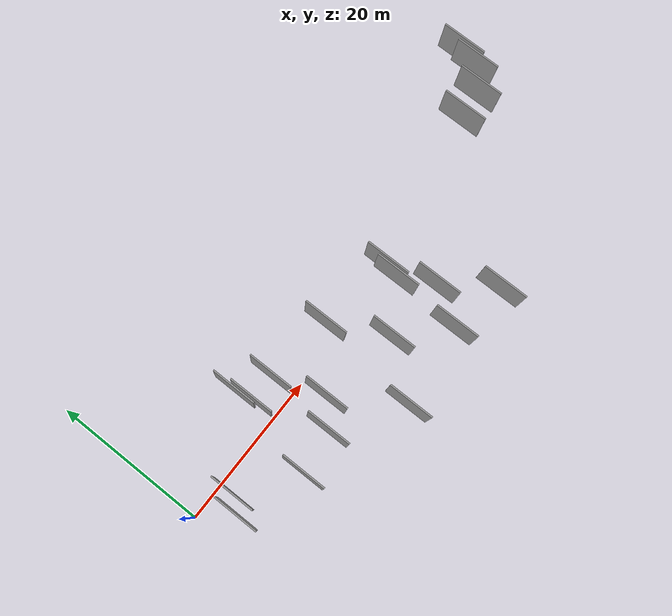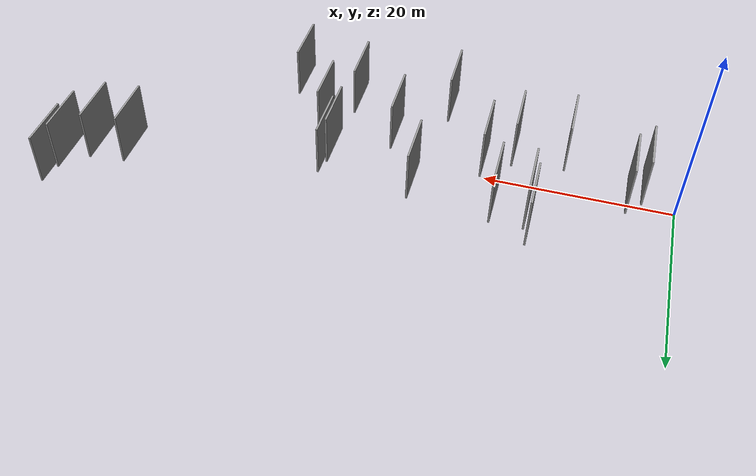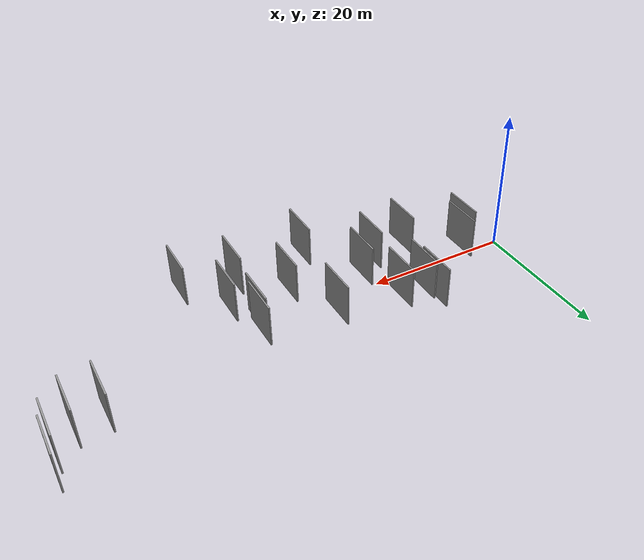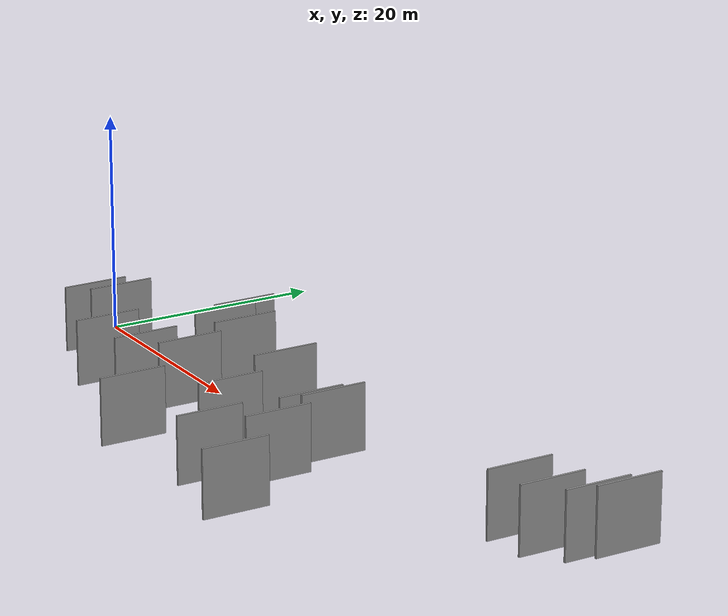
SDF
<sdf version="1.6">
 <world name="default">
  <scene>
   <sky><clouds><speed>12</speed></clouds></sky>
   <ambient>0.4 0.4 0.4 1</ambient>
   <background>0.7 0.7 0.7 1</background>
   <shadows>1</shadows>
  </scene>
  <gravity>0 0 -9.8066</gravity>
  <magnetic_field>6e-06 2.3e-05 -4.2e-05</magnetic_field>
  <physics default="0" name="default_physics" type="ode">
   <ode>
    <solver>
     <type>quick</type>
     <iters>10</iters>
     <sor>1.0</sor>
     <use_dynamic_moi_rescaling>0</use_dynamic_moi_rescaling>
    </solver>
    <constraints>
     <cfm>0</cfm>
     <erp>0.2</erp>
     <contact_max_correcting_vel>100</contact_max_correcting_vel>
     <contact_surface_layer>0.001</contact_surface_layer>
    </constraints>
   </ode>
   <max_step_size>0.004</max_step_size>
   <real_time_factor>1</real_time_factor>
   <real_time_update_rate>250</real_time_update_rate>
  </physics>
  <light name="sun" type="directional">
   <pose>0 0 10 0 0 0</pose>
   <diffuse>0.8 0.8 0.8 1</diffuse>
   <specular>0.2 0.2 0.2 1</specular>
   <attenuation>
    <range>1000</range>
    <constant>0.9</constant>
    <linear>0.01</linear>
    <quadratic>0.001</quadratic>
   </attenuation>
   <direction>-0.5 0.1 -0.9</direction>
  </light>
  <model name="grey_wall_1">
   <static>1</static>
   <pose>43.8868 -11.6122 0.0 0.000000 0.000000 1.570796</pose>
   <link name="link">
    <pose>0 0 3.00 0 0 0</pose>
    <collision name="collision"><geometry><box><size>6.00 0.2 6.00</size></box></geometry></collision>
    <visual name="visual">
     <cast_shadows>0</cast_shadows>
     <geometry><box><size>6.00 0.2 6.00</size></box></geometry>
     <material>
      <script>
       <uri>model://grey_wall/materials/scripts</uri>
       <uri>model://grey_wall/materials/textures</uri>
       <name>vrc/grey_wall</name>
      </script>
     </material>
    </visual>
   </link>
  </model>
  <model name="grey_wall_2">
   <static>1</static>
   <pose>37.6264 0.9709 0.0 0.000000 0.000000 1.570796</pose>
   <link name="link">
    <pose>0 0 3.00 0 0 0</pose>
    <collision name="collision"><geometry><box><size>6.00 0.2 6.00</size></box></geometry></collision>
    <visual name="visual">
     <cast_shadows>0</cast_shadows>
     <geometry><box><size>6.00 0.2 6.00</size></box></geometry>
     <material>
      <script>
       <uri>model://grey_wall/materials/scripts</uri>
       <uri>model://grey_wall/materials/textures</uri>
       <name>vrc/grey_wall</name>
      </script>
     </material>
    </visual>
   </link>
  </model>
  <model name="grey_wall_3">
   <static>1</static>
   <pose>65.8172 10.5460 0.0 0.000000 0.000000 1.570796</pose>
   <link name="link">
    <pose>0 0 3.00 0 0 0</pose>
    <collision name="collision"><geometry><box><size>6.00 0.2 6.00</size></box></geometry></collision>
    <visual name="visual">
     <cast_shadows>0</cast_shadows>
     <geometry><box><size>6.00 0.2 6.00</size></box></geometry>
     <material>
      <script>
       <uri>model://grey_wall/materials/scripts</uri>
       <uri>model://grey_wall/materials/textures</uri>
       <name>vrc/grey_wall</name>
      </script>
     </material>
    </visual>
   </link>
  </model>
  <model name="grey_wall_4">
   <static>1</static>
   <pose>30.9782 -4.9634 0.0 0.000000 0.000000 1.570796</pose>
   <link name="link">
    <pose>0 0 3.00 0 0 0</pose>
    <collision name="collision"><geometry><box><size>6.00 0.2 6.00</size></box></geometry></collision>
    <visual name="visual">
     <cast_shadows>0</cast_shadows>
     <geometry><box><size>6.00 0.2 6.00</size></box></geometry>
     <material>
      <script>
       <uri>model://grey_wall/materials/scripts</uri>
       <uri>model://grey_wall/materials/textures</uri>
       <name>vrc/grey_wall</name>
      </script>
     </material>
    </visual>
   </link>
  </model>
  <model name="grey_wall_5">
   <static>1</static>
   <pose>3.4092 -3.5799 0.0 0.000000 0.000000 1.570796</pose>
   <link name="link">
    <pose>0 0 3.00 0 0 0</pose>
    <collision name="collision"><geometry><box><size>6.00 0.2 6.00</size></box></geometry></collision>
    <visual name="visual">
     <cast_shadows>0</cast_shadows>
     <geometry><box><size>6.00 0.2 6.00</size></box></geometry>
     <material>
      <script>
       <uri>model://grey_wall/materials/scripts</uri>
       <uri>model://grey_wall/materials/textures</uri>
       <name>vrc/grey_wall</name>
      </script>
     </material>
    </visual>
   </link>
  </model>
  <model name="grey_wall_6">
   <static>1</static>
   <pose>36.5905 -9.9612 0.0 0.000000 0.000000 1.570796</pose>
   <link name="link">
    <pose>0 0 3.00 0 0 0</pose>
    <collision name="collision"><geometry><box><size>6.00 0.2 6.00</size></box></geometry></collision>
    <visual name="visual">
     <cast_shadows>0</cast_shadows>
     <geometry><box><size>6.00 0.2 6.00</size></box></geometry>
     <material>
      <script>
       <uri>model://grey_wall/materials/scripts</uri>
       <uri>model://grey_wall/materials/textures</uri>
       <name>vrc/grey_wall</name>
      </script>
     </material>
    </visual>
   </link>
  </model>
  <model name="grey_wall_7">
   <static>1</static>
   <pose>14.8238 3.4158 0.0 0.000000 0.000000 1.570796</pose>
   <link name="link">
    <pose>0 0 3.00 0 0 0</pose>
    <collision name="collision"><geometry><box><size>6.00 0.2 6.00</size></box></geometry></collision>
    <visual name="visual">
     <cast_shadows>0</cast_shadows>
     <geometry><box><size>6.00 0.2 6.00</size></box></geometry>
     <material>
      <script>
       <uri>model://grey_wall/materials/scripts</uri>
       <uri>model://grey_wall/materials/textures</uri>
       <name>vrc/grey_wall</name>
      </script>
     </material>
    </visual>
   </link>
  </model>
  <model name="grey_wall_8">
   <static>1</static>
   <pose>65.2599 8.0636 0.0 0.000000 0.000000 1.570796</pose>
   <link name="link">
    <pose>0 0 3.00 0 0 0</pose>
    <collision name="collision"><geometry><box><size>6.00 0.2 6.00</size></box></geometry></collision>
    <visual name="visual">
     <cast_shadows>0</cast_shadows>
     <geometry><box><size>6.00 0.2 6.00</size></box></geometry>
     <material>
      <script>
       <uri>model://grey_wall/materials/scripts</uri>
       <uri>model://grey_wall/materials/textures</uri>
       <name>vrc/grey_wall</name>
      </script>
     </material>
    </visual>
   </link>
  </model>
  <model name="grey_wall_9">
   <static>1</static>
   <pose>25.7594 -11.3495 0.0 0.000000 0.000000 1.570796</pose>
   <link name="link">
    <pose>0 0 3.00 0 0 0</pose>
    <collision name="collision"><geometry><box><size>6.00 0.2 6.00</size></box></geometry></collision>
    <visual name="visual">
     <cast_shadows>0</cast_shadows>
     <geometry><box><size>6.00 0.2 6.00</size></box></geometry>
     <material>
      <script>
       <uri>model://grey_wall/materials/scripts</uri>
       <uri>model://grey_wall/materials/textures</uri>
       <name>vrc/grey_wall</name>
      </script>
     </material>
    </visual>
   </link>
  </model>
  <model name="grey_wall_10">
   <static>1</static>
   <pose>18.4055 3.4214 0.0 0.000000 0.000000 1.570796</pose>
   <link name="link">
    <pose>0 0 3.00 0 0 0</pose>
    <collision name="collision"><geometry><box><size>6.00 0.2 6.00</size></box></geometry></collision>
    <visual name="visual">
     <cast_shadows>0</cast_shadows>
     <geometry><box><size>6.00 0.2 6.00</size></box></geometry>
     <material>
      <script>
       <uri>model://grey_wall/materials/scripts</uri>
       <uri>model://grey_wall/materials/textures</uri>
       <name>vrc/grey_wall</name>
      </script>
     </material>
    </visual>
   </link>
  </model>
  <model name="grey_wall_11">
   <static>1</static>
   <pose>39.4593 -5.2583 0.0 0.000000 0.000000 1.570796</pose>
   <link name="link">
    <pose>0 0 3.00 0 0 0</pose>
    <collision name="collision"><geometry><box><size>6.00 0.2 6.00</size></box></geometry></collision>
    <visual name="visual">
     <cast_shadows>0</cast_shadows>
     <geometry><box><size>6.00 0.2 6.00</size></box></geometry>
     <material>
      <script>
       <uri>model://grey_wall/materials/scripts</uri>
       <uri>model://grey_wall/materials/textures</uri>
       <name>vrc/grey_wall</name>
      </script>
     </material>
    </visual>
   </link>
  </model>
  <model name="grey_wall_12">
   <static>1</static>
   <pose>27.4023 2.3140 0.0 0.000000 0.000000 1.570796</pose>
   <link name="link">
    <pose>0 0 3.00 0 0 0</pose>
    <collision name="collision"><geometry><box><size>6.00 0.2 6.00</size></box></geometry></collision>
    <visual name="visual">
     <cast_shadows>0</cast_shadows>
     <geometry><box><size>6.00 0.2 6.00</size></box></geometry>
     <material>
      <script>
       <uri>model://grey_wall/materials/scripts</uri>
       <uri>model://grey_wall/materials/textures</uri>
       <name>vrc/grey_wall</name>
      </script>
     </material>
    </visual>
   </link>
  </model>
  <model name="grey_wall_13">
   <static>1</static>
   <pose>58.7687 5.2185 0.0 0.000000 0.000000 1.570796</pose>
   <link name="link">
    <pose>0 0 3.00 0 0 0</pose>
    <collision name="collision"><geometry><box><size>6.00 0.2 6.00</size></box></geometry></collision>
    <visual name="visual">
     <cast_shadows>0</cast_shadows>
     <geometry><box><size>6.00 0.2 6.00</size></box></geometry>
     <material>
      <script>
       <uri>model://grey_wall/materials/scripts</uri>
       <uri>model://grey_wall/materials/textures</uri>
       <name>vrc/grey_wall</name>
      </script>
     </material>
    </visual>
   </link>
  </model>
  <model name="grey_wall_14">
   <static>1</static>
   <pose>11.8633 -6.6331 0.0 0.000000 0.000000 1.570796</pose>
   <link name="link">
    <pose>0 0 3.00 0 0 0</pose>
    <collision name="collision"><geometry><box><size>6.00 0.2 6.00</size></box></geometry></collision>
    <visual name="visual">
     <cast_shadows>0</cast_shadows>
     <geometry><box><size>6.00 0.2 6.00</size></box></geometry>
     <material>
      <script>
       <uri>model://grey_wall/materials/scripts</uri>
       <uri>model://grey_wall/materials/textures</uri>
       <name>vrc/grey_wall</name>
      </script>
     </material>
    </visual>
   </link>
  </model>
  <model name="grey_wall_15">
   <static>1</static>
   <pose>17.5225 -5.8248 0.0 0.000000 0.000000 1.570796</pose>
   <link name="link">
    <pose>0 0 3.00 0 0 0</pose>
    <collision name="collision"><geometry><box><size>6.00 0.2 6.00</size></box></geometry></collision>
    <visual name="visual">
     <cast_shadows>0</cast_shadows>
     <geometry><box><size>6.00 0.2 6.00</size></box></geometry>
     <material>
      <script>
       <uri>model://grey_wall/materials/scripts</uri>
       <uri>model://grey_wall/materials/textures</uri>
       <name>vrc/grey_wall</name>
      </script>
     </material>
    </visual>
   </link>
  </model>
  <model name="grey_wall_16">
   <static>1</static>
   <pose>62.6330 5.6442 0.0 0.000000 0.000000 1.570796</pose>
   <link name="link">
    <pose>0 0 3.00 0 0 0</pose>
    <collision name="collision"><geometry><box><size>6.00 0.2 6.00</size></box></geometry></collision>
    <visual name="visual">
     <cast_shadows>0</cast_shadows>
     <geometry><box><size>6.00 0.2 6.00</size></box></geometry>
     <material>
      <script>
       <uri>model://grey_wall/materials/scripts</uri>
       <uri>model://grey_wall/materials/textures</uri>
       <name>vrc/grey_wall</name>
      </script>
     </material>
    </visual>
   </link>
  </model>
  <model name="grey_wall_17">
   <static>1</static>
   <pose>37.1906 -0.8558 0.0 0.000000 0.000000 1.570796</pose>
   <link name="link">
    <pose>0 0 3.00 0 0 0</pose>
    <collision name="collision"><geometry><box><size>6.00 0.2 6.00</size></box></geometry></collision>
    <visual name="visual">
     <cast_shadows>0</cast_shadows>
     <geometry><box><size>6.00 0.2 6.00</size></box></geometry>
     <material>
      <script>
       <uri>model://grey_wall/materials/scripts</uri>
       <uri>model://grey_wall/materials/textures</uri>
       <name>vrc/grey_wall</name>
      </script>
     </material>
    </visual>
   </link>
  </model>
  <model name="grey_wall_18">
   <static>1</static>
   <pose>4.9351 -1.8012 0.0 0.000000 0.000000 1.570796</pose>
   <link name="link">
    <pose>0 0 3.00 0 0 0</pose>
    <collision name="collision"><geometry><box><size>6.00 0.2 6.00</size></box></geometry></collision>
    <visual name="visual">
     <cast_shadows>0</cast_shadows>
     <geometry><box><size>6.00 0.2 6.00</size></box></geometry>
     <material>
      <script>
       <uri>model://grey_wall/materials/scripts</uri>
       <uri>model://grey_wall/materials/textures</uri>
       <name>vrc/grey_wall</name>
      </script>
     </material>
    </visual>
   </link>
  </model>
  <model name="grey_wall_19">
   <static>1</static>
   <pose>20.5377 -3.1805 0.0 0.000000 0.000000 1.570796</pose>
   <link name="link">
    <pose>0 0 3.00 0 0 0</pose>
    <collision name="collision"><geometry><box><size>6.00 0.2 6.00</size></box></geometry></collision>
    <visual name="visual">
     <cast_shadows>0</cast_shadows>
     <geometry><box><size>6.00 0.2 6.00</size></box></geometry>
     <material>
      <script>
       <uri>model://grey_wall/materials/scripts</uri>
       <uri>model://grey_wall/materials/textures</uri>
       <name>vrc/grey_wall</name>
      </script>
     </material>
    </visual>
   </link>
  </model>
  <model name="grey_wall_20">
   <static>1</static>
   <pose>14.3497 5.5900 0.0 0.000000 0.000000 1.570796</pose>
   <link name="link">
    <pose>0 0 3.00 0 0 0</pose>
    <collision name="collision"><geometry><box><size>6.00 0.2 6.00</size></box></geometry></collision>
    <visual name="visual">
     <cast_shadows>0</cast_shadows>
     <geometry><box><size>6.00 0.2 6.00</size></box></geometry>
     <material>
      <script>
       <uri>model://grey_wall/materials/scripts</uri>
       <uri>model://grey_wall/materials/textures</uri>
       <name>vrc/grey_wall</name>
      </script>
     </material>
    </visual>
   </link>
  </model>
 </world>
</sdf>
